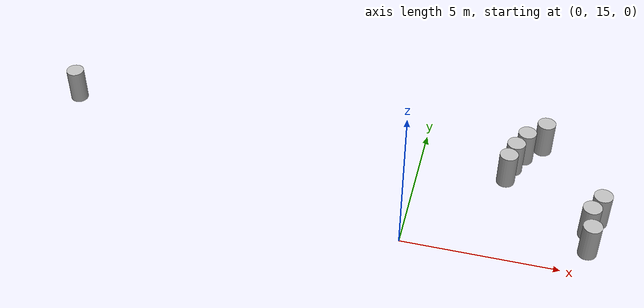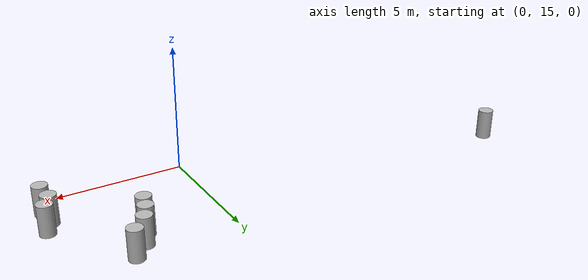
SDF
<sdf version="1.6">
 <world name="default">
  <model name="Construction Barrel_clone_clone_clone_33">
   <link name="link">
    <inertial>
     <pose>0 0 0.5 0 -0 0</pose>
     <mass>500</mass>
     <inertia><ixx>51.2096</ixx><iyy>51.2096</iyy><izz>25</izz><ixy>0</ixy><ixz>0</ixz><iyz>0</iyz></inertia>
    </inertial>
    <collision name="collision">
     <geometry><cylinder><radius>0.3</radius><length>1.2</length></cylinder></geometry>
    </collision>
    <visual name="visual">
     <geometry><cylinder><radius>0.3</radius><length>1.2</length></cylinder></geometry>
     <material>
      <script>
       <uri>model://construction_barrel/materials/scripts</uri>
       <uri>model://construction_barrel/materials/textures</uri>
       <name>construction_barrel/Image</name>
      </script>
     </material>
    </visual>
    <velocity_decay><linear>0</linear><angular>0</angular></velocity_decay>
   </link>
   <pose>-12.4882 19.0852 0.613748 0 -0 0</pose>
   <static>1</static>
  </model>
  <model name="Construction Barrel_clone_clone_clone_41">
   <link name="link">
    <inertial>
     <pose>0 0 0.5 0 -0 0</pose>
     <mass>500</mass>
     <inertia><ixx>51.2096</ixx><iyy>51.2096</iyy><izz>25</izz><ixy>0</ixy><ixz>0</ixz><iyz>0</iyz></inertia>
    </inertial>
    <collision name="collision">
     <geometry><cylinder><radius>0.3</radius><length>1.2</length></cylinder></geometry>
    </collision>
    <visual name="visual">
     <geometry><cylinder><radius>0.3</radius><length>1.2</length></cylinder></geometry>
     <material>
      <script>
       <uri>model://construction_barrel/materials/scripts</uri>
       <uri>model://construction_barrel/materials/textures</uri>
       <name>construction_barrel/Image</name>
      </script>
     </material>
    </visual>
    <velocity_decay><linear>0</linear><angular>0</angular></velocity_decay>
   </link>
   <pose>3.90385 20.2996 0.613748 0 -0 0</pose>
   <static>1</static>
  </model>
  <model name="Construction Barrel_clone_clone_clone_42">
   <link name="link">
    <inertial>
     <pose>0 0 0.5 0 -0 0</pose>
     <mass>500</mass>
     <inertia><ixx>51.2096</ixx><iyy>51.2096</iyy><izz>25</izz><ixy>0</ixy><ixz>0</ixz><iyz>0</iyz></inertia>
    </inertial>
    <collision name="collision">
     <geometry><cylinder><radius>0.3</radius><length>1.2</length></cylinder></geometry>
    </collision>
    <visual name="visual">
     <geometry><cylinder><radius>0.3</radius><length>1.2</length></cylinder></geometry>
     <material>
      <script>
       <uri>model://construction_barrel/materials/scripts</uri>
       <uri>model://construction_barrel/materials/textures</uri>
       <name>construction_barrel/Image</name>
      </script>
     </material>
    </visual>
    <velocity_decay><linear>0</linear><angular>0</angular></velocity_decay>
   </link>
   <pose>3.3353 19.6952 0.613748 0 -0 0</pose>
   <static>1</static>
  </model>
  <model name="Construction Barrel_clone_clone_clone_43">
   <link name="link">
    <inertial>
     <pose>0 0 0.5 0 -0 0</pose>
     <mass>500</mass>
     <inertia><ixx>51.2096</ixx><iyy>51.2096</iyy><izz>25</izz><ixy>0</ixy><ixz>0</ixz><iyz>0</iyz></inertia>
    </inertial>
    <collision name="collision">
     <geometry><cylinder><radius>0.3</radius><length>1.2</length></cylinder></geometry>
    </collision>
    <visual name="visual">
     <geometry><cylinder><radius>0.3</radius><length>1.2</length></cylinder></geometry>
     <material>
      <script>
       <uri>model://construction_barrel/materials/scripts</uri>
       <uri>model://construction_barrel/materials/textures</uri>
       <name>construction_barrel/Image</name>
      </script>
     </material>
    </visual>
    <velocity_decay><linear>0</linear><angular>0</angular></velocity_decay>
   </link>
   <pose>3.04467 19.0884 0.613748 0 -0 0</pose>
   <static>1</static>
  </model>
  <model name="Construction Barrel_clone_clone_clone_44">
   <link name="link">
    <inertial>
     <pose>0 0 0.5 0 -0 0</pose>
     <mass>500</mass>
     <inertia><ixx>51.2096</ixx><iyy>51.2096</iyy><izz>25</izz><ixy>0</ixy><ixz>0</ixz><iyz>0</iyz></inertia>
    </inertial>
    <collision name="collision">
     <geometry><cylinder><radius>0.3</radius><length>1.2</length></cylinder></geometry>
    </collision>
    <visual name="visual">
     <geometry><cylinder><radius>0.3</radius><length>1.2</length></cylinder></geometry>
     <material>
      <script>
       <uri>model://construction_barrel/materials/scripts</uri>
       <uri>model://construction_barrel/materials/textures</uri>
       <name>construction_barrel/Image</name>
      </script>
     </material>
    </visual>
    <velocity_decay><linear>0</linear><angular>0</angular></velocity_decay>
   </link>
   <pose>2.8768 18.4888 0.613748 0 -0 0</pose>
   <static>1</static>
  </model>
  <model name="Construction Barrel_clone_clone_clone_45">
   <link name="link">
    <inertial>
     <pose>0 0 0.5 0 -0 0</pose>
     <mass>500</mass>
     <inertia><ixx>51.2096</ixx><iyy>51.2096</iyy><izz>25</izz><ixy>0</ixy><ixz>0</ixz><iyz>0</iyz></inertia>
    </inertial>
    <collision name="collision">
     <geometry><cylinder><radius>0.3</radius><length>1.2</length></cylinder></geometry>
    </collision>
    <visual name="visual">
     <geometry><cylinder><radius>0.3</radius><length>1.2</length></cylinder></geometry>
     <material>
      <script>
       <uri>model://construction_barrel/materials/scripts</uri>
       <uri>model://construction_barrel/materials/textures</uri>
       <name>construction_barrel/Image</name>
      </script>
     </material>
    </visual>
    <velocity_decay><linear>0</linear><angular>0</angular></velocity_decay>
   </link>
   <pose>5.96155 17.3125 0.613748 0 -0 0</pose>
   <static>1</static>
  </model>
  <model name="Construction Barrel_clone_clone_clone_46">
   <link name="link">
    <inertial>
     <pose>0 0 0.5 0 -0 0</pose>
     <mass>500</mass>
     <inertia><ixx>51.2096</ixx><iyy>51.2096</iyy><izz>25</izz><ixy>0</ixy><ixz>0</ixz><iyz>0</iyz></inertia>
    </inertial>
    <collision name="collision">
     <geometry><cylinder><radius>0.3</radius><length>1.2</length></cylinder></geometry>
    </collision>
    <visual name="visual">
     <geometry><cylinder><radius>0.3</radius><length>1.2</length></cylinder></geometry>
     <material>
      <script>
       <uri>model://construction_barrel/materials/scripts</uri>
       <uri>model://construction_barrel/materials/textures</uri>
       <name>construction_barrel/Image</name>
      </script>
     </material>
    </visual>
    <velocity_decay><linear>0</linear><angular>0</angular></velocity_decay>
   </link>
   <pose>5.66973 16.7214 0.613748 0 -0 0</pose>
   <static>1</static>
  </model>
  <model name="Construction Barrel_clone_clone_clone_47">
   <link name="link">
    <inertial>
     <pose>0 0 0.5 0 -0 0</pose>
     <mass>500</mass>
     <inertia><ixx>51.2096</ixx><iyy>51.2096</iyy><izz>25</izz><ixy>0</ixy><ixz>0</ixz><iyz>0</iyz></inertia>
    </inertial>
    <collision name="collision">
     <geometry><cylinder><radius>0.3</radius><length>1.2</length></cylinder></geometry>
    </collision>
    <visual name="visual">
     <geometry><cylinder><radius>0.3</radius><length>1.2</length></cylinder></geometry>
     <material>
      <script>
       <uri>model://construction_barrel/materials/scripts</uri>
       <uri>model://construction_barrel/materials/textures</uri>
       <name>construction_barrel/Image</name>
      </script>
     </material>
    </visual>
    <velocity_decay><linear>0</linear><angular>0</angular></velocity_decay>
   </link>
   <pose>5.73769 15.9188 0.613748 0 -0 0</pose>
   <static>1</static>
  </model>
 </world>
</sdf>
